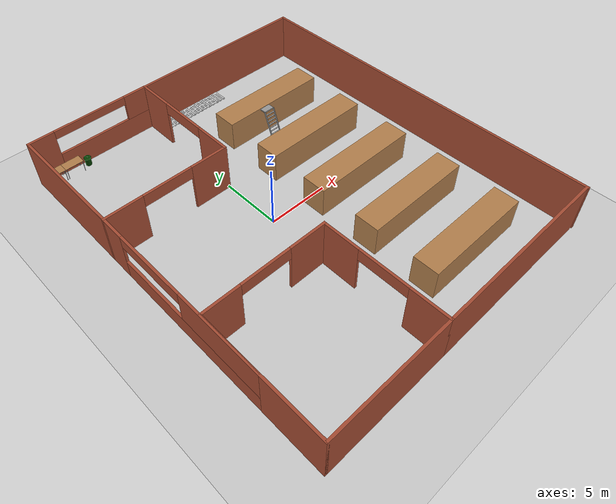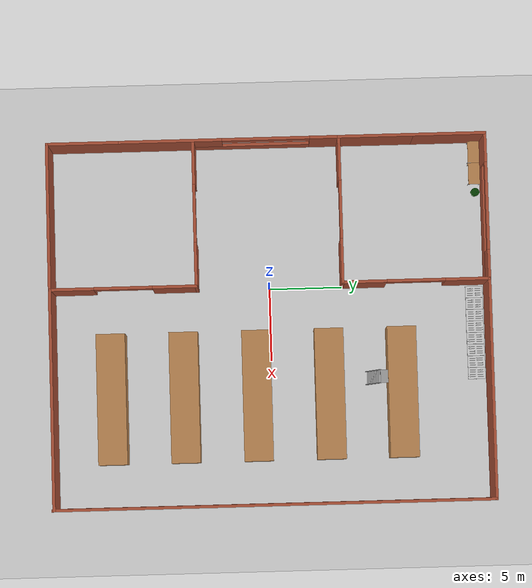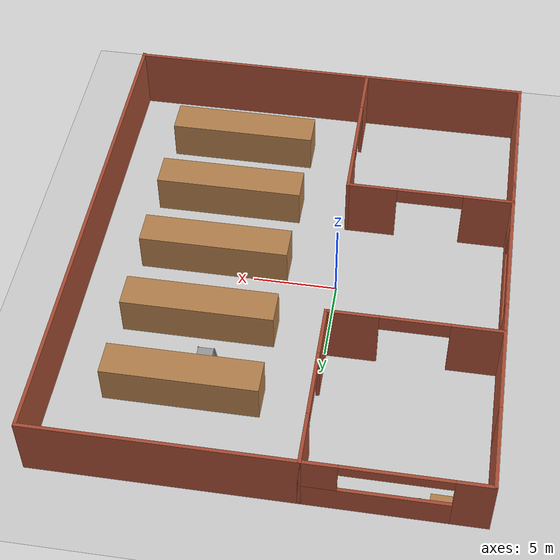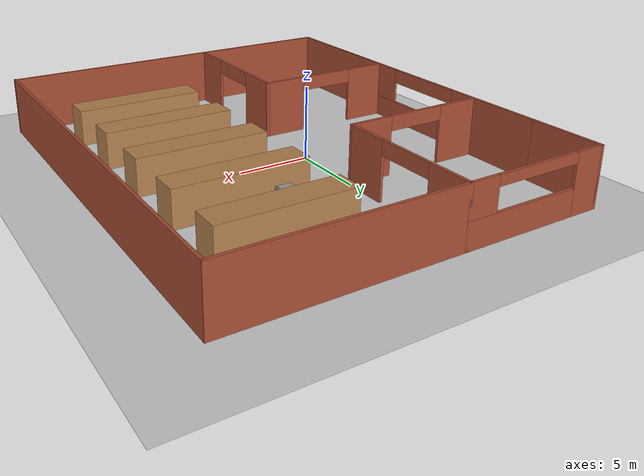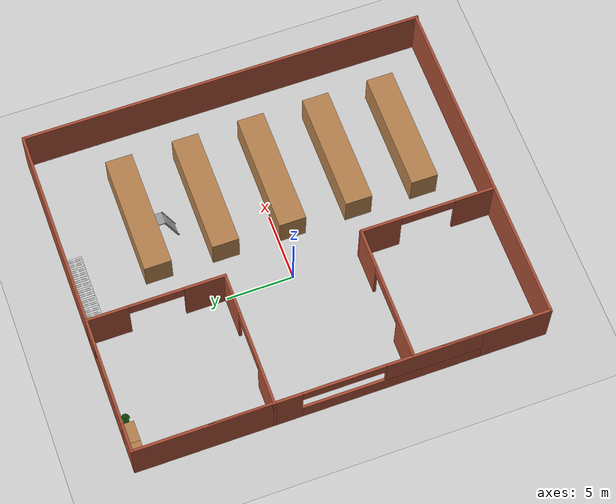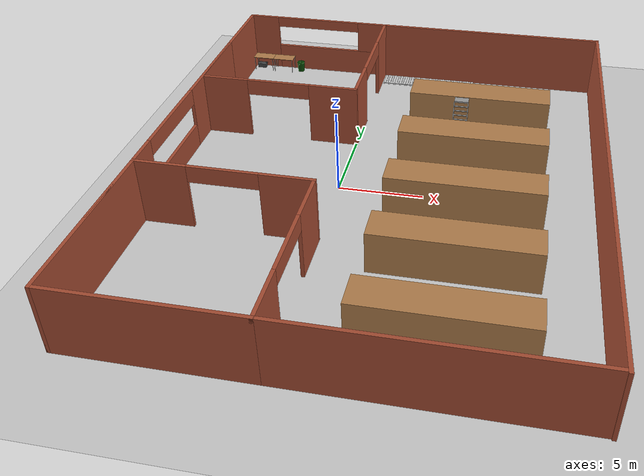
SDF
<sdf version="1.4">
 <world name="default">
  <include><uri>model://ground_plane</uri></include>
  <include><uri>model://sun</uri></include>
  <model name="WareHouse">
   <pose>2.5 -0.033501 0 0 -0 0</pose>
   <link name="Wall_12">
    <pose>-7.5 -4.9665 0 0 -0 3.14159</pose>
    <visual name="Wall_12_Visual_0">
     <pose>-3.55 0 2 0 -0 0</pose>
     <geometry><box><size>3.1 0.2 4</size></box></geometry>
     <material>
      <script><uri>file://media/materials/scripts/gazebo.material</uri><name>Gazebo/Bricks</name></script>
      <ambient>1 1 1 1</ambient>
     </material>
     <meta><layer>0</layer></meta>
    </visual>
    <collision name="Wall_12_Collision_0">
     <geometry><box><size>3.1 0.2 4</size></box></geometry>
     <pose>-3.55 0 2 0 -0 0</pose>
    </collision>
    <visual name="Wall_12_Visual_1">
     <pose>3.55 0 2 0 -0 0</pose>
     <geometry><box><size>3.1 0.2 4</size></box></geometry>
     <material>
      <script><uri>file://media/materials/scripts/gazebo.material</uri><name>Gazebo/Bricks</name></script>
      <ambient>1 1 1 1</ambient>
     </material>
     <meta><layer>0</layer></meta>
    </visual>
    <collision name="Wall_12_Collision_1">
     <geometry><box><size>3.1 0.2 4</size></box></geometry>
     <pose>3.55 0 2 0 -0 0</pose>
    </collision>
    <visual name="Wall_12_Visual_2">
     <pose>0 0 3.5 0 -0 0</pose>
     <geometry><box><size>4 0.2 1</size></box></geometry>
     <material>
      <script><uri>file://media/materials/scripts/gazebo.material</uri><name>Gazebo/Bricks</name></script>
      <ambient>1 1 1 1</ambient>
     </material>
     <meta><layer>0</layer></meta>
    </visual>
    <collision name="Wall_12_Collision_2">
     <geometry><box><size>4 0.2 1</size></box></geometry>
     <pose>0 0 3.5 0 -0 0</pose>
    </collision>
   </link>
   <link name="Wall_13">
    <collision name="Wall_13_Collision">
     <geometry><box><size>10.2 0.2 4</size></box></geometry>
     <pose>0 0 2 0 -0 0</pose>
    </collision>
    <visual name="Wall_13_Visual">
     <pose>0 0 2 0 -0 0</pose>
     <geometry><box><size>10.2 0.2 4</size></box></geometry>
     <material>
      <script><uri>file://media/materials/scripts/gazebo.material</uri><name>Gazebo/Bricks</name></script>
      <ambient>1 1 1 1</ambient>
     </material>
     <meta><layer>0</layer></meta>
    </visual>
    <pose>-12.5 -9.9665 0 0 -0 -1.5708</pose>
   </link>
   <link name="Wall_14">
    <collision name="Wall_14_Collision">
     <geometry><box><size>10.2 0.2 4</size></box></geometry>
     <pose>0 0 2 0 -0 0</pose>
    </collision>
    <visual name="Wall_14_Visual">
     <pose>0 0 2 0 -0 0</pose>
     <geometry><box><size>10.2 0.2 4</size></box></geometry>
     <material>
      <script><uri>file://media/materials/scripts/gazebo.material</uri><name>Gazebo/Bricks</name></script>
      <ambient>1 1 1 1</ambient>
     </material>
     <meta><layer>0</layer></meta>
    </visual>
    <pose>-7.5 -14.9665 0 0 -0 0</pose>
   </link>
   <link name="Wall_15">
    <pose>-2.5 -9.9665 0 0 -0 1.5708</pose>
    <visual name="Wall_15_Visual_0">
     <pose>-3.55 0 2 0 -0 0</pose>
     <geometry><box><size>3.1 0.2 4</size></box></geometry>
     <material>
      <script><uri>file://media/materials/scripts/gazebo.material</uri><name>Gazebo/Bricks</name></script>
      <ambient>1 1 1 1</ambient>
     </material>
     <meta><layer>0</layer></meta>
    </visual>
    <collision name="Wall_15_Collision_0">
     <geometry><box><size>3.1 0.2 4</size></box></geometry>
     <pose>-3.55 0 2 0 -0 0</pose>
    </collision>
    <visual name="Wall_15_Visual_1">
     <pose>3.55 0 2 0 -0 0</pose>
     <geometry><box><size>3.1 0.2 4</size></box></geometry>
     <material>
      <script><uri>file://media/materials/scripts/gazebo.material</uri><name>Gazebo/Bricks</name></script>
      <ambient>1 1 1 1</ambient>
     </material>
     <meta><layer>0</layer></meta>
    </visual>
    <collision name="Wall_15_Collision_1">
     <geometry><box><size>3.1 0.2 4</size></box></geometry>
     <pose>3.55 0 2 0 -0 0</pose>
    </collision>
    <visual name="Wall_15_Visual_2">
     <pose>0 0 3.5 0 -0 0</pose>
     <geometry><box><size>4 0.2 1</size></box></geometry>
     <material>
      <script><uri>file://media/materials/scripts/gazebo.material</uri><name>Gazebo/Bricks</name></script>
      <ambient>1 1 1 1</ambient>
     </material>
     <meta><layer>0</layer></meta>
    </visual>
    <collision name="Wall_15_Collision_2">
     <geometry><box><size>4 0.2 1</size></box></geometry>
     <pose>0 0 3.5 0 -0 0</pose>
    </collision>
   </link>
   <link name="Wall_17">
    <pose>-12.5 0.033501 0 0 -0 -1.5708</pose>
    <visual name="Wall_17_Visual_0">
     <pose>-6.55 0 2 0 -0 0</pose>
     <geometry><box><size>7.1 0.2 4</size></box></geometry>
     <material>
      <script><uri>file://media/materials/scripts/gazebo.material</uri><name>Gazebo/Bricks</name></script>
      <ambient>1 1 1 1</ambient>
     </material>
     <meta><layer>0</layer></meta>
    </visual>
    <collision name="Wall_17_Collision_0">
     <geometry><box><size>7.1 0.2 4</size></box></geometry>
     <pose>-6.55 0 2 0 -0 0</pose>
    </collision>
    <visual name="Wall_17_Visual_1">
     <pose>3.55 0 0.75 0 -0 0</pose>
     <geometry><box><size>13.1 0.2 1.5</size></box></geometry>
     <material>
      <script><uri>file://media/materials/scripts/gazebo.material</uri><name>Gazebo/Bricks</name></script>
      <ambient>1 1 1 1</ambient>
     </material>
     <meta><layer>0</layer></meta>
    </visual>
    <collision name="Wall_17_Collision_1">
     <geometry><box><size>13.1 0.2 1.5</size></box></geometry>
     <pose>3.55 0 0.75 0 -0 0</pose>
    </collision>
    <visual name="Wall_17_Visual_2">
     <pose>6.55 0 2.75 0 -0 0</pose>
     <geometry><box><size>7.1 0.2 2.5</size></box></geometry>
     <material>
      <script><uri>file://media/materials/scripts/gazebo.material</uri><name>Gazebo/Bricks</name></script>
      <ambient>1 1 1 1</ambient>
     </material>
     <meta><layer>0</layer></meta>
    </visual>
    <collision name="Wall_17_Collision_2">
     <geometry><box><size>7.1 0.2 2.5</size></box></geometry>
     <pose>6.55 0 2.75 0 -0 0</pose>
    </collision>
    <visual name="Wall_17_Visual_3">
     <pose>0 0 3.5 0 -0 0</pose>
     <geometry><box><size>6 0.2 1</size></box></geometry>
     <material>
      <script><uri>file://media/materials/scripts/gazebo.material</uri><name>Gazebo/Bricks</name></script>
      <ambient>1 1 1 1</ambient>
     </material>
     <meta><layer>0</layer></meta>
    </visual>
    <collision name="Wall_17_Collision_3">
     <geometry><box><size>6 0.2 1</size></box></geometry>
     <pose>0 0 3.5 0 -0 0</pose>
    </collision>
   </link>
   <link name="Wall_19">
    <collision name="Wall_19_Collision">
     <geometry><box><size>15.2 0.2 4</size></box></geometry>
     <pose>0 0 2 0 -0 0</pose>
    </collision>
    <visual name="Wall_19_Visual">
     <pose>0 0 2 0 -0 0</pose>
     <geometry><box><size>15.2 0.2 4</size></box></geometry>
     <material>
      <script><uri>file://media/materials/scripts/gazebo.material</uri><name>Gazebo/Bricks</name></script>
      <ambient>1 1 1 1</ambient>
     </material>
     <meta><layer>0</layer></meta>
    </visual>
    <pose>5 15.0335 0 0 -0 0</pose>
   </link>
   <link name="Wall_2">
    <pose>-7.5 15.0335 0 0 -0 0</pose>
    <visual name="Wall_2_Visual_0">
     <pose>-4.04112 0 2 0 -0 0</pose>
     <geometry><box><size>2.11776 0.2 4</size></box></geometry>
     <material>
      <script><uri>file://media/materials/scripts/gazebo.material</uri><name>Gazebo/Bricks</name></script>
      <ambient>1 1 1 1</ambient>
     </material>
     <meta><layer>0</layer></meta>
    </visual>
    <collision name="Wall_2_Collision_0">
     <geometry><box><size>2.11776 0.2 4</size></box></geometry>
     <pose>-4.04112 0 2 0 -0 0</pose>
    </collision>
    <visual name="Wall_2_Visual_1">
     <pose>1.05888 0 0.9 0 -0 0</pose>
     <geometry><box><size>8.08224 0.2 1.8</size></box></geometry>
     <material>
      <script><uri>file://media/materials/scripts/gazebo.material</uri><name>Gazebo/Bricks</name></script>
      <ambient>1 1 1 1</ambient>
     </material>
     <meta><layer>0</layer></meta>
    </visual>
    <collision name="Wall_2_Collision_1">
     <geometry><box><size>8.08224 0.2 1.8</size></box></geometry>
     <pose>1.05888 0 0.9 0 -0 0</pose>
    </collision>
    <visual name="Wall_2_Visual_2">
     <pose>4.05888 0 2.9 0 -0 0</pose>
     <geometry><box><size>2.08224 0.2 2.2</size></box></geometry>
     <material>
      <script><uri>file://media/materials/scripts/gazebo.material</uri><name>Gazebo/Bricks</name></script>
      <ambient>1 1 1 1</ambient>
     </material>
     <meta><layer>0</layer></meta>
    </visual>
    <collision name="Wall_2_Collision_2">
     <geometry><box><size>2.08224 0.2 2.2</size></box></geometry>
     <pose>4.05888 0 2.9 0 -0 0</pose>
    </collision>
    <visual name="Wall_2_Visual_3">
     <pose>0.01776 0 3.65 0 -0 0</pose>
     <geometry><box><size>6 0.2 0.7</size></box></geometry>
     <material>
      <script><uri>file://media/materials/scripts/gazebo.material</uri><name>Gazebo/Bricks</name></script>
      <ambient>1 1 1 1</ambient>
     </material>
     <meta><layer>0</layer></meta>
    </visual>
    <collision name="Wall_2_Collision_3">
     <geometry><box><size>6 0.2 0.7</size></box></geometry>
     <pose>0.01776 0 3.65 0 -0 0</pose>
    </collision>
   </link>
   <link name="Wall_21">
    <collision name="Wall_21_Collision">
     <geometry><box><size>30.2 0.2 4</size></box></geometry>
     <pose>0 0 2 0 -0 0</pose>
    </collision>
    <visual name="Wall_21_Visual">
     <pose>0 0 2 0 -0 0</pose>
     <geometry><box><size>30.2 0.2 4</size></box></geometry>
     <material>
      <script><uri>file://media/materials/scripts/gazebo.material</uri><name>Gazebo/Bricks</name></script>
      <ambient>1 1 1 1</ambient>
     </material>
     <meta><layer>0</layer></meta>
    </visual>
    <pose>12.5 -0.033499 0 0 -0 -1.5708</pose>
   </link>
   <link name="Wall_23">
    <collision name="Wall_23_Collision">
     <geometry><box><size>15.2 0.2 4</size></box></geometry>
     <pose>0 0 2 0 -0 0</pose>
    </collision>
    <visual name="Wall_23_Visual">
     <pose>0 0 2 0 -0 0</pose>
     <geometry><box><size>15.2 0.2 4</size></box></geometry>
     <material>
      <script><uri>file://media/materials/scripts/gazebo.material</uri><name>Gazebo/Bricks</name></script>
      <ambient>1 1 1 1</ambient>
     </material>
     <meta><layer>0</layer></meta>
    </visual>
    <pose>5 -14.9665 0 0 -0 0</pose>
   </link>
   <link name="Wall_4">
    <pose>-2.5 10.0335 0 0 -0 -1.5708</pose>
    <visual name="Wall_4_Visual_0">
     <pose>-3.54841 0 2 0 -0 0</pose>
     <geometry><box><size>3.10318 0.2 4</size></box></geometry>
     <material>
      <script><uri>file://media/materials/scripts/gazebo.material</uri><name>Gazebo/Bricks</name></script>
      <ambient>1 1 1 1</ambient>
     </material>
     <meta><layer>0</layer></meta>
    </visual>
    <collision name="Wall_4_Collision_0">
     <geometry><box><size>3.10318 0.2 4</size></box></geometry>
     <pose>-3.54841 0 2 0 -0 0</pose>
    </collision>
    <visual name="Wall_4_Visual_1">
     <pose>3.55159 0 2 0 -0 0</pose>
     <geometry><box><size>3.09682 0.2 4</size></box></geometry>
     <material>
      <script><uri>file://media/materials/scripts/gazebo.material</uri><name>Gazebo/Bricks</name></script>
      <ambient>1 1 1 1</ambient>
     </material>
     <meta><layer>0</layer></meta>
    </visual>
    <collision name="Wall_4_Collision_1">
     <geometry><box><size>3.09682 0.2 4</size></box></geometry>
     <pose>3.55159 0 2 0 -0 0</pose>
    </collision>
    <visual name="Wall_4_Visual_2">
     <pose>0.003178 0 3.5 0 -0 0</pose>
     <geometry><box><size>4 0.2 1</size></box></geometry>
     <material>
      <script><uri>file://media/materials/scripts/gazebo.material</uri><name>Gazebo/Bricks</name></script>
      <ambient>1 1 1 1</ambient>
     </material>
     <meta><layer>0</layer></meta>
    </visual>
    <collision name="Wall_4_Collision_2">
     <geometry><box><size>4 0.2 1</size></box></geometry>
     <pose>0.003178 0 3.5 0 -0 0</pose>
    </collision>
   </link>
   <link name="Wall_5">
    <pose>-7.5 5.0335 0 0 -0 3.14159</pose>
    <visual name="Wall_5_Visual_0">
     <pose>-3.55 0 2 0 -0 0</pose>
     <geometry><box><size>3.1 0.2 4</size></box></geometry>
     <material>
      <script><uri>file://media/materials/scripts/gazebo.material</uri><name>Gazebo/Bricks</name></script>
      <ambient>1 1 1 1</ambient>
     </material>
     <meta><layer>0</layer></meta>
    </visual>
    <collision name="Wall_5_Collision_0">
     <geometry><box><size>3.1 0.2 4</size></box></geometry>
     <pose>-3.55 0 2 0 -0 0</pose>
    </collision>
    <visual name="Wall_5_Visual_1">
     <pose>3.55 0 2 0 -0 0</pose>
     <geometry><box><size>3.1 0.2 4</size></box></geometry>
     <material>
      <script><uri>file://media/materials/scripts/gazebo.material</uri><name>Gazebo/Bricks</name></script>
      <ambient>1 1 1 1</ambient>
     </material>
     <meta><layer>0</layer></meta>
    </visual>
    <collision name="Wall_5_Collision_1">
     <geometry><box><size>3.1 0.2 4</size></box></geometry>
     <pose>3.55 0 2 0 -0 0</pose>
    </collision>
    <visual name="Wall_5_Visual_2">
     <pose>0 0 3.5 0 -0 0</pose>
     <geometry><box><size>4 0.2 1</size></box></geometry>
     <material>
      <script><uri>file://media/materials/scripts/gazebo.material</uri><name>Gazebo/Bricks</name></script>
      <ambient>1 1 1 1</ambient>
     </material>
     <meta><layer>0</layer></meta>
    </visual>
    <collision name="Wall_5_Collision_2">
     <geometry><box><size>4 0.2 1</size></box></geometry>
     <pose>0 0 3.5 0 -0 0</pose>
    </collision>
   </link>
   <link name="Wall_6">
    <collision name="Wall_6_Collision">
     <geometry><box><size>10.2 0.2 4</size></box></geometry>
     <pose>0 0 2 0 -0 0</pose>
    </collision>
    <visual name="Wall_6_Visual">
     <pose>0 0 2 0 -0 0</pose>
     <geometry><box><size>10.2 0.2 4</size></box></geometry>
     <material>
      <script><uri>file://media/materials/scripts/gazebo.material</uri><name>Gazebo/Bricks</name></script>
      <ambient>1 1 1 1</ambient>
     </material>
     <meta><layer>0</layer></meta>
    </visual>
    <pose>-12.5 10.0335 0 0 -0 1.5708</pose>
   </link>
   <link name="link_0">
    <inertial>
     <mass>1e+08</mass>
     <inertia>
      <ixx>1.66667e+07</ixx>
      <ixy>0</ixy>
      <ixz>0</ixz>
      <iyy>1.66667e+07</iyy>
      <iyz>0</iyz>
      <izz>1.66667e+07</izz>
     </inertia>
    </inertial>
    <pose>5 9 1.25 0 -0 0</pose>
    <visual name="visual">
     <geometry><box><size>9 2 2.5</size></box></geometry>
     <material>
      <lighting>1</lighting>
      <script><uri>file://media/materials/scripts/gazebo.material</uri><name>Gazebo/Wood</name></script>
      <shader type="pixel"><normal_map>__default__</normal_map></shader>
      <ambient>0.3 0.3 0.3 1</ambient>
      <diffuse>0.7 0.7 0.7 1</diffuse>
      <specular>0.01 0.01 0.01 1</specular>
      <emissive>0 0 0 1</emissive>
     </material>
    </visual>
    <collision name="collision">
     <geometry><box><size>9 2 2.5</size></box></geometry>
     <surface>
      <friction>
       <ode><mu>1</mu><mu2>1</mu2><fdir1>0 0 0</fdir1><slip1>0</slip1><slip2>0</slip2></ode>
       <torsional>
        <coefficient>1</coefficient>
        <patch_radius>0</patch_radius>
        <surface_radius>0</surface_radius>
        <use_patch_radius>1</use_patch_radius>
        <ode><slip>0</slip></ode>
       </torsional>
      </friction>
      <bounce><restitution_coefficient>0</restitution_coefficient><threshold>1e+06</threshold></bounce>
      <contact>
       <collide_without_contact>0</collide_without_contact>
       <collide_without_contact_bitmask>1</collide_without_contact_bitmask>
       <collide_bitmask>1</collide_bitmask>
       <ode>
        <soft_cfm>0</soft_cfm>
        <soft_erp>0.2</soft_erp>
        <kp>1e+13</kp>
        <kd>1</kd>
        <max_vel>0.01</max_vel>
        <min_depth>0</min_depth>
       </ode>
       <bullet>
        <split_impulse>1</split_impulse>
        <split_impulse_penetration_threshold>-0.01</split_impulse_penetration_threshold>
        <soft_cfm>0</soft_cfm>
        <soft_erp>0.2</soft_erp>
        <kp>1e+13</kp>
        <kd>1</kd>
       </bullet>
      </contact>
     </surface>
    </collision>
   </link>
   <link name="link_0_clone">
    <inertial>
     <mass>1e+08</mass>
     <inertia>
      <ixx>1.66667e+07</ixx>
      <ixy>0</ixy>
      <ixz>0</ixz>
      <iyy>1.66667e+07</iyy>
      <iyz>0</iyz>
      <izz>1.66667e+07</izz>
     </inertia>
    </inertial>
    <pose>5 4 1.25 0 -0 0</pose>
    <visual name="visual">
     <geometry><box><size>9 2 2.5</size></box></geometry>
     <material>
      <lighting>1</lighting>
      <script><uri>file://media/materials/scripts/gazebo.material</uri><name>Gazebo/Wood</name></script>
      <shader type="pixel"><normal_map>__default__</normal_map></shader>
      <ambient>0.3 0.3 0.3 1</ambient>
      <diffuse>0.7 0.7 0.7 1</diffuse>
      <specular>0.01 0.01 0.01 1</specular>
      <emissive>0 0 0 1</emissive>
     </material>
    </visual>
    <collision name="collision">
     <geometry><box><size>9 2 2.5</size></box></geometry>
     <surface>
      <friction>
       <ode><mu>1</mu><mu2>1</mu2><fdir1>0 0 0</fdir1><slip1>0</slip1><slip2>0</slip2></ode>
       <torsional>
        <coefficient>1</coefficient>
        <patch_radius>0</patch_radius>
        <surface_radius>0</surface_radius>
        <use_patch_radius>1</use_patch_radius>
        <ode><slip>0</slip></ode>
       </torsional>
      </friction>
      <bounce><restitution_coefficient>0</restitution_coefficient><threshold>1e+06</threshold></bounce>
      <contact>
       <collide_without_contact>0</collide_without_contact>
       <collide_without_contact_bitmask>1</collide_without_contact_bitmask>
       <collide_bitmask>1</collide_bitmask>
       <ode>
        <soft_cfm>0</soft_cfm>
        <soft_erp>0.2</soft_erp>
        <kp>1e+13</kp>
        <kd>1</kd>
        <max_vel>0.01</max_vel>
        <min_depth>0</min_depth>
       </ode>
       <bullet>
        <split_impulse>1</split_impulse>
        <split_impulse_penetration_threshold>-0.01</split_impulse_penetration_threshold>
        <soft_cfm>0</soft_cfm>
        <soft_erp>0.2</soft_erp>
        <kp>1e+13</kp>
        <kd>1</kd>
       </bullet>
      </contact>
     </surface>
    </collision>
   </link>
   <link name="link_0_clone_0">
    <inertial>
     <mass>1e+08</mass>
     <inertia>
      <ixx>1.66667e+07</ixx>
      <ixy>0</ixy>
      <ixz>0</ixz>
      <iyy>1.66667e+07</iyy>
      <iyz>0</iyz>
      <izz>1.66667e+07</izz>
     </inertia>
    </inertial>
    <pose>5 -1 1.25 0 -0 0</pose>
    <visual name="visual">
     <geometry><box><size>9 2 2.5</size></box></geometry>
     <material>
      <lighting>1</lighting>
      <script><uri>file://media/materials/scripts/gazebo.material</uri><name>Gazebo/Wood</name></script>
      <shader type="pixel"><normal_map>__default__</normal_map></shader>
      <ambient>0.3 0.3 0.3 1</ambient>
      <diffuse>0.7 0.7 0.7 1</diffuse>
      <specular>0.01 0.01 0.01 1</specular>
      <emissive>0 0 0 1</emissive>
     </material>
    </visual>
    <collision name="collision">
     <geometry><box><size>9 2 2.5</size></box></geometry>
     <surface>
      <friction>
       <ode><mu>1</mu><mu2>1</mu2><fdir1>0 0 0</fdir1><slip1>0</slip1><slip2>0</slip2></ode>
       <torsional>
        <coefficient>1</coefficient>
        <patch_radius>0</patch_radius>
        <surface_radius>0</surface_radius>
        <use_patch_radius>1</use_patch_radius>
        <ode><slip>0</slip></ode>
       </torsional>
      </friction>
      <bounce><restitution_coefficient>0</restitution_coefficient><threshold>1e+06</threshold></bounce>
      <contact>
       <collide_without_contact>0</collide_without_contact>
       <collide_without_contact_bitmask>1</collide_without_contact_bitmask>
       <collide_bitmask>1</collide_bitmask>
       <ode>
        <soft_cfm>0</soft_cfm>
        <soft_erp>0.2</soft_erp>
        <kp>1e+13</kp>
        <kd>1</kd>
        <max_vel>0.01</max_vel>
        <min_depth>0</min_depth>
       </ode>
       <bullet>
        <split_impulse>1</split_impulse>
        <split_impulse_penetration_threshold>-0.01</split_impulse_penetration_threshold>
        <soft_cfm>0</soft_cfm>
        <soft_erp>0.2</soft_erp>
        <kp>1e+13</kp>
        <kd>1</kd>
       </bullet>
      </contact>
     </surface>
    </collision>
   </link>
   <link name="link_0_clone_0_clone">
    <inertial>
     <mass>1e+08</mass>
     <inertia>
      <ixx>1.66667e+07</ixx>
      <ixy>0</ixy>
      <ixz>0</ixz>
      <iyy>1.66667e+07</iyy>
      <iyz>0</iyz>
      <izz>1.66667e+07</izz>
     </inertia>
    </inertial>
    <pose>5 -6 1.25 0 -0 0</pose>
    <visual name="visual">
     <geometry><box><size>9 2 2.5</size></box></geometry>
     <material>
      <lighting>1</lighting>
      <script><uri>file://media/materials/scripts/gazebo.material</uri><name>Gazebo/Wood</name></script>
      <shader type="pixel"><normal_map>__default__</normal_map></shader>
      <ambient>0.3 0.3 0.3 1</ambient>
      <diffuse>0.7 0.7 0.7 1</diffuse>
      <specular>0.01 0.01 0.01 1</specular>
      <emissive>0 0 0 1</emissive>
     </material>
    </visual>
    <collision name="collision">
     <geometry><box><size>9 2 2.5</size></box></geometry>
     <surface>
      <friction>
       <ode><mu>1</mu><mu2>1</mu2><fdir1>0 0 0</fdir1><slip1>0</slip1><slip2>0</slip2></ode>
       <torsional>
        <coefficient>1</coefficient>
        <patch_radius>0</patch_radius>
        <surface_radius>0</surface_radius>
        <use_patch_radius>1</use_patch_radius>
        <ode><slip>0</slip></ode>
       </torsional>
      </friction>
      <bounce><restitution_coefficient>0</restitution_coefficient><threshold>1e+06</threshold></bounce>
      <contact>
       <collide_without_contact>0</collide_without_contact>
       <collide_without_contact_bitmask>1</collide_without_contact_bitmask>
       <collide_bitmask>1</collide_bitmask>
       <ode>
        <soft_cfm>0</soft_cfm>
        <soft_erp>0.2</soft_erp>
        <kp>1e+13</kp>
        <kd>1</kd>
        <max_vel>0.01</max_vel>
        <min_depth>0</min_depth>
       </ode>
       <bullet>
        <split_impulse>1</split_impulse>
        <split_impulse_penetration_threshold>-0.01</split_impulse_penetration_threshold>
        <soft_cfm>0</soft_cfm>
        <soft_erp>0.2</soft_erp>
        <kp>1e+13</kp>
        <kd>1</kd>
       </bullet>
      </contact>
     </surface>
    </collision>
   </link>
   <link name="link_0_clone_0_clone_0">
    <inertial>
     <mass>1e+08</mass>
     <inertia>
      <ixx>1.66667e+07</ixx>
      <ixy>0</ixy>
      <ixz>0</ixz>
      <iyy>1.66667e+07</iyy>
      <iyz>0</iyz>
      <izz>1.66667e+07</izz>
     </inertia>
    </inertial>
    <pose>5 -11 1.25 0 -0 0</pose>
    <visual name="visual">
     <geometry><box><size>9 2 2.5</size></box></geometry>
     <material>
      <lighting>1</lighting>
      <script><uri>file://media/materials/scripts/gazebo.material</uri><name>Gazebo/Wood</name></script>
      <shader type="pixel"><normal_map>__default__</normal_map></shader>
      <ambient>0.3 0.3 0.3 1</ambient>
      <diffuse>0.7 0.7 0.7 1</diffuse>
      <specular>0.01 0.01 0.01 1</specular>
      <emissive>0 0 0 1</emissive>
     </material>
    </visual>
    <collision name="collision">
     <geometry><box><size>9 2 2.5</size></box></geometry>
     <surface>
      <friction>
       <ode><mu>1</mu><mu2>1</mu2><fdir1>0 0 0</fdir1><slip1>0</slip1><slip2>0</slip2></ode>
       <torsional>
        <coefficient>1</coefficient>
        <patch_radius>0</patch_radius>
        <surface_radius>0</surface_radius>
        <use_patch_radius>1</use_patch_radius>
        <ode><slip>0</slip></ode>
       </torsional>
      </friction>
      <bounce><restitution_coefficient>0</restitution_coefficient><threshold>1e+06</threshold></bounce>
      <contact>
       <collide_without_contact>0</collide_without_contact>
       <collide_without_contact_bitmask>1</collide_without_contact_bitmask>
       <collide_bitmask>1</collide_bitmask>
       <ode>
        <soft_cfm>0</soft_cfm>
        <soft_erp>0.2</soft_erp>
        <kp>1e+13</kp>
        <kd>1</kd>
        <max_vel>0.01</max_vel>
        <min_depth>0</min_depth>
       </ode>
       <bullet>
        <split_impulse>1</split_impulse>
        <split_impulse_penetration_threshold>-0.01</split_impulse_penetration_threshold>
        <soft_cfm>0</soft_cfm>
        <soft_erp>0.2</soft_erp>
        <kp>1e+13</kp>
        <kd>1</kd>
       </bullet>
      </contact>
     </surface>
    </collision>
   </link>
   <model name="euro_pallet">
    <link name="link">
     <inertial>
      <mass>20</mass>
      <inertia><ixx>2.43</ixx><ixy>0</ixy><ixz>0</ixz><iyy>1.1</iyy><iyz>0</iyz><izz>3.47</izz></inertia>
     </inertial>
     <collision name="collision">
      <pose>0 0 0.05 0 -0 0</pose>
      <geometry><mesh><uri>model://euro_pallet/meshes/pallet.dae</uri><scale>0.1 0.1 0.1</scale></mesh></geometry>
     </collision>
     <visual name="visual">
      <pose>0 0 0.05 0 -0 0</pose>
      <geometry><mesh><uri>model://euro_pallet/meshes/pallet.dae</uri><scale>0.1 0.1 0.1</scale></mesh></geometry>
     </visual>
    </link>
    <pose>-1.91189 14.2628 0 0 -0 0</pose>
   </model>
   <model name="euro_pallet_0">
    <link name="link">
     <inertial>
      <mass>20</mass>
      <inertia><ixx>2.43</ixx><ixy>0</ixy><ixz>0</ixz><iyy>1.1</iyy><iyz>0</iyz><izz>3.47</izz></inertia>
     </inertial>
     <collision name="collision">
      <pose>0 0 0.05 0 -0 0</pose>
      <geometry><mesh><uri>model://euro_pallet/meshes/pallet.dae</uri><scale>0.1 0.1 0.1</scale></mesh></geometry>
     </collision>
     <visual name="visual">
      <pose>0 0 0.05 0 -0 0</pose>
      <geometry><mesh><uri>model://euro_pallet/meshes/pallet.dae</uri><scale>0.1 0.1 0.1</scale></mesh></geometry>
     </visual>
    </link>
    <pose>-1.10471 14.2621 0 0 -0 0</pose>
   </model>
   <model name="euro_pallet_1">
    <link name="link">
     <inertial>
      <mass>20</mass>
      <inertia><ixx>2.43</ixx><ixy>0</ixy><ixz>0</ixz><iyy>1.1</iyy><iyz>0</iyz><izz>3.47</izz></inertia>
     </inertial>
     <collision name="collision">
      <pose>0 0 0.05 0 -0 0</pose>
      <geometry><mesh><uri>model://euro_pallet/meshes/pallet.dae</uri><scale>0.1 0.1 0.1</scale></mesh></geometry>
     </collision>
     <visual name="visual">
      <pose>0 0 0.05 0 -0 0</pose>
      <geometry><mesh><uri>model://euro_pallet/meshes/pallet.dae</uri><scale>0.1 0.1 0.1</scale></mesh></geometry>
     </visual>
    </link>
    <pose>-0.291147 14.2621 0 0 -0 0</pose>
   </model>
   <model name="euro_pallet_2">
    <link name="link">
     <inertial>
      <mass>20</mass>
      <inertia><ixx>2.43</ixx><ixy>0</ixy><ixz>0</ixz><iyy>1.1</iyy><iyz>0</iyz><izz>3.47</izz></inertia>
     </inertial>
     <collision name="collision">
      <pose>0 0 0.05 0 -0 0</pose>
      <geometry><mesh><uri>model://euro_pallet/meshes/pallet.dae</uri><scale>0.1 0.1 0.1</scale></mesh></geometry>
     </collision>
     <visual name="visual">
      <pose>0 0 0.05 0 -0 0</pose>
      <geometry><mesh><uri>model://euro_pallet/meshes/pallet.dae</uri><scale>0.1 0.1 0.1</scale></mesh></geometry>
     </visual>
    </link>
    <pose>0.512337 14.2599 0 0 -0 0</pose>
   </model>
   <model name="euro_pallet_3">
    <link name="link">
     <inertial>
      <mass>20</mass>
      <inertia><ixx>2.43</ixx><ixy>0</ixy><ixz>0</ixz><iyy>1.1</iyy><iyz>0</iyz><izz>3.47</izz></inertia>
     </inertial>
     <collision name="collision">
      <pose>0 0 0.05 0 -0 0</pose>
      <geometry><mesh><uri>model://euro_pallet/meshes/pallet.dae</uri><scale>0.1 0.1 0.1</scale></mesh></geometry>
     </collision>
     <visual name="visual">
      <pose>0 0 0.05 0 -0 0</pose>
      <geometry><mesh><uri>model://euro_pallet/meshes/pallet.dae</uri><scale>0.1 0.1 0.1</scale></mesh></geometry>
     </visual>
    </link>
    <pose>1.32208 14.2683 0 0 -0 0</pose>
   </model>
   <model name="euro_pallet_4">
    <link name="link">
     <inertial>
      <mass>20</mass>
      <inertia><ixx>2.43</ixx><ixy>0</ixy><ixz>0</ixz><iyy>1.1</iyy><iyz>0</iyz><izz>3.47</izz></inertia>
     </inertial>
     <collision name="collision">
      <pose>0 0 0.05 0 -0 0</pose>
      <geometry><mesh><uri>model://euro_pallet/meshes/pallet.dae</uri><scale>0.1 0.1 0.1</scale></mesh></geometry>
     </collision>
     <visual name="visual">
      <pose>0 0 0.05 0 -0 0</pose>
      <geometry><mesh><uri>model://euro_pallet/meshes/pallet.dae</uri><scale>0.1 0.1 0.1</scale></mesh></geometry>
     </visual>
    </link>
    <pose>2.13714 14.2747 0 0 -0 0</pose>
   </model>
   <model name="euro_pallet_5">
    <link name="link">
     <inertial>
      <mass>20</mass>
      <inertia><ixx>2.43</ixx><ixy>0</ixy><ixz>0</ixz><iyy>1.1</iyy><iyz>0</iyz><izz>3.47</izz></inertia>
     </inertial>
     <collision name="collision">
      <pose>0 0 0.05 0 -0 0</pose>
      <geometry><mesh><uri>model://euro_pallet/meshes/pallet.dae</uri><scale>0.1 0.1 0.1</scale></mesh></geometry>
     </collision>
     <visual name="visual">
      <pose>0 0 0.05 0 -0 0</pose>
      <geometry><mesh><uri>model://euro_pallet/meshes/pallet.dae</uri><scale>0.1 0.1 0.1</scale></mesh></geometry>
     </visual>
    </link>
    <pose>2.95359 14.2776 0 0 -0 0</pose>
   </model>
   <model name="euro_pallet_6">
    <link name="link">
     <inertial>
      <mass>20</mass>
      <inertia><ixx>2.43</ixx><ixy>0</ixy><ixz>0</ixz><iyy>1.1</iyy><iyz>0</iyz><izz>3.47</izz></inertia>
     </inertial>
     <collision name="collision">
      <pose>0 0 0.05 0 -0 0</pose>
      <geometry><mesh><uri>model://euro_pallet/meshes/pallet.dae</uri><scale>0.1 0.1 0.1</scale></mesh></geometry>
     </collision>
     <visual name="visual">
      <pose>0 0 0.05 0 -0 0</pose>
      <geometry><mesh><uri>model://euro_pallet/meshes/pallet.dae</uri><scale>0.1 0.1 0.1</scale></mesh></geometry>
     </visual>
    </link>
    <pose>3.76216 14.2837 0 0 -0 0</pose>
   </model>
   <model name="first_2015_trash_can">
    <link name="link">
     <inertial>
      <pose>0 0 0.3683 0 -0 0</pose>
      <mass>4.83076</mass>
      <inertia>
       <ixx>0.281534</ixx>
       <ixy>0</ixy>
       <ixz>0</ixz>
       <iyy>0.281534</iyy>
       <iyz>0</iyz>
       <izz>0.126223</izz>
      </inertia>
     </inertial>
     <visual name="visual">
      <geometry><mesh><uri>model://first_2015_trash_can/meshes/trash_can.dae</uri></mesh></geometry>
     </visual>
     <collision name="collision">
      <geometry><mesh><uri>model://first_2015_trash_can/meshes/trash_can.dae</uri></mesh></geometry>
     </collision>
    </link>
    <pose>-8.83203 14.5313 0 0 -0 0</pose>
   </model>
   <model name="grey_tote">
    <link name="link">
     <inertial>
      <pose>0 0 0.14155 0 -0 0</pose>
      <mass>3.53802</mass>
      <inertia>
       <ixx>0.0688358</ixx>
       <ixy>0</ixy>
       <ixz>0</ixz>
       <iyy>0.139596</iyy>
       <iyz>0</iyz>
       <izz>0.155909</izz>
      </inertia>
     </inertial>
     <collision name="lid">
      <pose>0 0 0.28958 0 -0 0</pose>
      <geometry><box><size>0.67768 0.41298 0.01588</size></box></geometry>
     </collision>
     <collision name="lid_lip_1">
      <pose>0 0.20063 0.3048 0 -0 0</pose>
      <geometry><box><size>0.65068 0.0105 0.0127</size></box></geometry>
     </collision>
     <collision name="lid_lip_2">
      <pose>0 -0.20063 0.3048 0 -0 0</pose>
      <geometry><box><size>0.65068 0.0105 0.0127</size></box></geometry>
     </collision>
     <collision name="lid_lip_3">
      <pose>0.32585 0 0.3048 0 -0 0</pose>
      <geometry><box><size>0.02602 0.31202 0.0127</size></box></geometry>
     </collision>
     <collision name="lid_lip_4">
      <pose>-0.32585 0 0.3048 0 -0 0</pose>
      <geometry><box><size>0.02602 0.31202 0.0127</size></box></geometry>
     </collision>
     <collision name="side_wall_1">
      <pose>0 -0.18 0.14155 0.061147 -0 0</pose>
      <geometry><box><size>0.58404 0.02602 0.283099</size></box></geometry>
     </collision>
     <collision name="side_wall_2">
      <pose>0 0.18 0.14155 -0.061147 0 0</pose>
      <geometry><box><size>0.58404 0.02602 0.283099</size></box></geometry>
     </collision>
     <collision name="side_wall_3">
      <pose>0.305 0 0.14155 0 0.061147 0</pose>
      <geometry><box><size>0.02602 0.33046 0.283099</size></box></geometry>
     </collision>
     <collision name="side_wall_4">
      <pose>-0.305 0 0.14155 0 -0.061147 0</pose>
      <geometry><box><size>0.02602 0.33046 0.283099</size></box></geometry>
     </collision>
     <collision name="bottom">
      <pose>0 0 0.01 0 -0 0</pose>
      <geometry><box><size>0.58404 0.33046 0.02</size></box></geometry>
     </collision>
     <collision name="corner_1">
      <pose>0.30202 -0.175 0.14155 0.061147 0.061147 -0</pose>
      <geometry><cylinder><radius>0.01268</radius><length>0.283099</length></cylinder></geometry>
     </collision>
     <collision name="corner_2">
      <pose>-0.30202 -0.175 0.14155 0.061147 -0.061147 0</pose>
      <geometry><cylinder><radius>0.01268</radius><length>0.283099</length></cylinder></geometry>
     </collision>
     <collision name="corner_3">
      <pose>-0.30202 0.175 0.14155 -0.061147 -0.061147 -0</pose>
      <geometry><cylinder><radius>0.01268</radius><length>0.283099</length></cylinder></geometry>
     </collision>
     <collision name="corner_4">
      <pose>0.30202 0.175 0.14155 -0.061147 0.061147 0</pose>
      <geometry><cylinder><radius>0.01268</radius><length>0.283099</length></cylinder></geometry>
     </collision>
     <visual name="visual"><geometry><mesh><uri>model://grey_tote/meshes/tote.dae</uri></mesh></geometry></visual>
    </link>
    <pose>-11.9152 14.6623 0 0 -0 0</pose>
   </model>
   <model name="table">
    <static>1</static>
    <link name="link">
     <collision name="surface">
      <pose>0 0 1 0 -0 0</pose>
      <geometry><box><size>1.5 0.8 0.03</size></box></geometry>
      <surface><friction><ode><mu>0.6</mu><mu2>0.6</mu2></ode></friction></surface>
     </collision>
     <visual name="visual1">
      <pose>0 0 1 0 -0 0</pose>
      <geometry><box><size>1.5 0.8 0.03</size></box></geometry>
      <material>
       <script><uri>file://media/materials/scripts/gazebo.material</uri><name>Gazebo/Wood</name></script>
      </material>
     </visual>
     <collision name="front_left_leg">
      <pose>0.68 0.38 0.5 0 -0 0</pose>
      <geometry><cylinder><radius>0.02</radius><length>1</length></cylinder></geometry>
     </collision>
     <visual name="front_left_leg">
      <pose>0.68 0.38 0.5 0 -0 0</pose>
      <geometry><cylinder><radius>0.02</radius><length>1</length></cylinder></geometry>
      <material>
       <script><uri>file://media/materials/scripts/gazebo.material</uri><name>Gazebo/Grey</name></script>
      </material>
     </visual>
     <collision name="front_right_leg">
      <pose>0.68 -0.38 0.5 0 -0 0</pose>
      <geometry><cylinder><radius>0.02</radius><length>1</length></cylinder></geometry>
     </collision>
     <visual name="front_right_leg">
      <pose>0.68 -0.38 0.5 0 -0 0</pose>
      <geometry><cylinder><radius>0.02</radius><length>1</length></cylinder></geometry>
      <material>
       <script><uri>file://media/materials/scripts/gazebo.material</uri><name>Gazebo/Grey</name></script>
      </material>
     </visual>
     <collision name="back_right_leg">
      <pose>-0.68 -0.38 0.5 0 -0 0</pose>
      <geometry><cylinder><radius>0.02</radius><length>1</length></cylinder></geometry>
     </collision>
     <visual name="back_right_leg">
      <pose>-0.68 -0.38 0.5 0 -0 0</pose>
      <geometry><cylinder><radius>0.02</radius><length>1</length></cylinder></geometry>
      <material>
       <script><uri>file://media/materials/scripts/gazebo.material</uri><name>Gazebo/Grey</name></script>
      </material>
     </visual>
     <collision name="back_left_leg">
      <pose>-0.68 0.38 0.5 0 -0 0</pose>
      <geometry><cylinder><radius>0.02</radius><length>1</length></cylinder></geometry>
     </collision>
     <visual name="back_left_leg">
      <pose>-0.68 0.38 0.5 0 -0 0</pose>
      <geometry><cylinder><radius>0.02</radius><length>1</length></cylinder></geometry>
      <material>
       <script><uri>file://media/materials/scripts/gazebo.material</uri><name>Gazebo/Grey</name></script>
      </material>
     </visual>
    </link>
    <pose>-11.6099 14.4729 0 0 -0 0</pose>
   </model>
   <model name="table_clone">
    <static>1</static>
    <link name="link">
     <collision name="surface">
      <pose>0 0 1 0 -0 0</pose>
      <geometry><box><size>1.5 0.8 0.03</size></box></geometry>
      <surface><friction><ode><mu>0.6</mu><mu2>0.6</mu2></ode></friction></surface>
     </collision>
     <visual name="visual1">
      <pose>0 0 1 0 -0 0</pose>
      <geometry><box><size>1.5 0.8 0.03</size></box></geometry>
      <material>
       <script><uri>file://media/materials/scripts/gazebo.material</uri><name>Gazebo/Wood</name></script>
      </material>
     </visual>
     <collision name="front_left_leg">
      <pose>0.68 0.38 0.5 0 -0 0</pose>
      <geometry><cylinder><radius>0.02</radius><length>1</length></cylinder></geometry>
     </collision>
     <visual name="front_left_leg">
      <pose>0.68 0.38 0.5 0 -0 0</pose>
      <geometry><cylinder><radius>0.02</radius><length>1</length></cylinder></geometry>
      <material>
       <script><uri>file://media/materials/scripts/gazebo.material</uri><name>Gazebo/Grey</name></script>
      </material>
     </visual>
     <collision name="front_right_leg">
      <pose>0.68 -0.38 0.5 0 -0 0</pose>
      <geometry><cylinder><radius>0.02</radius><length>1</length></cylinder></geometry>
     </collision>
     <visual name="front_right_leg">
      <pose>0.68 -0.38 0.5 0 -0 0</pose>
      <geometry><cylinder><radius>0.02</radius><length>1</length></cylinder></geometry>
      <material>
       <script><uri>file://media/materials/scripts/gazebo.material</uri><name>Gazebo/Grey</name></script>
      </material>
     </visual>
     <collision name="back_right_leg">
      <pose>-0.68 -0.38 0.5 0 -0 0</pose>
      <geometry><cylinder><radius>0.02</radius><length>1</length></cylinder></geometry>
     </collision>
     <visual name="back_right_leg">
      <pose>-0.68 -0.38 0.5 0 -0 0</pose>
      <geometry><cylinder><radius>0.02</radius><length>1</length></cylinder></geometry>
      <material>
       <script><uri>file://media/materials/scripts/gazebo.material</uri><name>Gazebo/Grey</name></script>
      </material>
     </visual>
     <collision name="back_left_leg">
      <pose>-0.68 0.38 0.5 0 -0 0</pose>
      <geometry><cylinder><radius>0.02</radius><length>1</length></cylinder></geometry>
     </collision>
     <visual name="back_left_leg">
      <pose>-0.68 0.38 0.5 0 -0 0</pose>
      <geometry><cylinder><radius>0.02</radius><length>1</length></cylinder></geometry>
      <material>
       <script><uri>file://media/materials/scripts/gazebo.material</uri><name>Gazebo/Grey</name></script>
      </material>
     </visual>
    </link>
    <pose>-10.0977 14.4682 0 0 -0 0</pose>
   </model>
   <model name="ladder_70deg_0rails">
    <static>1</static>
    <link name="step0">
     <pose>0 0.097059 0.266667 0 -0 0</pose>
     <inertial>
      <mass>9.75482</mass>
      <inertia>
       <ixx>0.00957124</ixx>
       <iyy>0.65963</iyy>
       <izz>0.666842</izz>
       <ixy>0</ixy>
       <ixz>0</ixz>
       <iyz>0</iyz>
      </inertia>
     </inertial>
     <collision name="collision"><geometry><box><size>0.9 0.1016 0.0381</size></box></geometry></collision>
     <visual name="visual">
      <geometry><box><size>0.9 0.1016 0.0381</size></box></geometry>
      <material>
       <script><uri>file://media/materials/scripts/gazebo.material</uri><name>Gazebo/Grey</name></script>
      </material>
     </visual>
    </link>
    <link name="step1">
     <pose>0 0.194117 0.533333 0 -0 0</pose>
     <inertial>
      <mass>9.75482</mass>
      <inertia>
       <ixx>0.00957124</ixx>
       <iyy>0.65963</iyy>
       <izz>0.666842</izz>
       <ixy>0</ixy>
       <ixz>0</ixz>
       <iyz>0</iyz>
      </inertia>
     </inertial>
     <collision name="collision"><geometry><box><size>0.9 0.1016 0.0381</size></box></geometry></collision>
     <visual name="visual">
      <geometry><box><size>0.9 0.1016 0.0381</size></box></geometry>
      <material>
       <script><uri>file://media/materials/scripts/gazebo.material</uri><name>Gazebo/Grey</name></script>
      </material>
     </visual>
    </link>
    <link name="step2">
     <pose>0 0.291176 0.8 0 -0 0</pose>
     <inertial>
      <mass>9.75482</mass>
      <inertia>
       <ixx>0.00957124</ixx>
       <iyy>0.65963</iyy>
       <izz>0.666842</izz>
       <ixy>0</ixy>
       <ixz>0</ixz>
       <iyz>0</iyz>
      </inertia>
     </inertial>
     <collision name="collision"><geometry><box><size>0.9 0.1016 0.0381</size></box></geometry></collision>
     <visual name="visual">
      <geometry><box><size>0.9 0.1016 0.0381</size></box></geometry>
      <material>
       <script><uri>file://media/materials/scripts/gazebo.material</uri><name>Gazebo/Grey</name></script>
      </material>
     </visual>
    </link>
    <link name="step3">
     <pose>0 0.388235 1.06667 0 -0 0</pose>
     <inertial>
      <mass>9.75482</mass>
      <inertia>
       <ixx>0.00957124</ixx>
       <iyy>0.65963</iyy>
       <izz>0.666842</izz>
       <ixy>0</ixy>
       <ixz>0</ixz>
       <iyz>0</iyz>
      </inertia>
     </inertial>
     <collision name="collision"><geometry><box><size>0.9 0.1016 0.0381</size></box></geometry></collision>
     <visual name="visual">
      <geometry><box><size>0.9 0.1016 0.0381</size></box></geometry>
      <material>
       <script><uri>file://media/materials/scripts/gazebo.material</uri><name>Gazebo/Grey</name></script>
      </material>
     </visual>
    </link>
    <link name="step4">
     <pose>0 0.485294 1.33333 0 -0 0</pose>
     <inertial>
      <mass>9.75482</mass>
      <inertia>
       <ixx>0.00957124</ixx>
       <iyy>0.65963</iyy>
       <izz>0.666842</izz>
       <ixy>0</ixy>
       <ixz>0</ixz>
       <iyz>0</iyz>
      </inertia>
     </inertial>
     <collision name="collision"><geometry><box><size>0.9 0.1016 0.0381</size></box></geometry></collision>
     <visual name="visual">
      <geometry><box><size>0.9 0.1016 0.0381</size></box></geometry>
      <material>
       <script><uri>file://media/materials/scripts/gazebo.material</uri><name>Gazebo/Grey</name></script>
      </material>
     </visual>
    </link>
    <link name="step5">
     <pose>0 0.582352 1.6 0 -0 0</pose>
     <inertial>
      <mass>9.75482</mass>
      <inertia>
       <ixx>0.00957124</ixx>
       <iyy>0.65963</iyy>
       <izz>0.666842</izz>
       <ixy>0</ixy>
       <ixz>0</ixz>
       <iyz>0</iyz>
      </inertia>
     </inertial>
     <collision name="collision"><geometry><box><size>0.9 0.1016 0.0381</size></box></geometry></collision>
     <visual name="visual">
      <geometry><box><size>0.9 0.1016 0.0381</size></box></geometry>
      <material>
       <script><uri>file://media/materials/scripts/gazebo.material</uri><name>Gazebo/Grey</name></script>
      </material>
     </visual>
    </link>
    <link name="step6">
     <pose>0 0.679411 1.86667 0 -0 0</pose>
     <inertial>
      <mass>9.75482</mass>
      <inertia>
       <ixx>0.00957124</ixx>
       <iyy>0.65963</iyy>
       <izz>0.666842</izz>
       <ixy>0</ixy>
       <ixz>0</ixz>
       <iyz>0</iyz>
      </inertia>
     </inertial>
     <collision name="collision"><geometry><box><size>0.9 0.1016 0.0381</size></box></geometry></collision>
     <visual name="visual">
      <geometry><box><size>0.9 0.1016 0.0381</size></box></geometry>
      <material>
       <script><uri>file://media/materials/scripts/gazebo.material</uri><name>Gazebo/Grey</name></script>
      </material>
     </visual>
    </link>
    <link name="step7">
     <pose>0 0.77647 2.13333 0 -0 0</pose>
     <inertial>
      <mass>9.75482</mass>
      <inertia>
       <ixx>0.00957124</ixx>
       <iyy>0.65963</iyy>
       <izz>0.666842</izz>
       <ixy>0</ixy>
       <ixz>0</ixz>
       <iyz>0</iyz>
      </inertia>
     </inertial>
     <collision name="collision"><geometry><box><size>0.9 0.1016 0.0381</size></box></geometry></collision>
     <visual name="visual">
      <geometry><box><size>0.9 0.1016 0.0381</size></box></geometry>
      <material>
       <script><uri>file://media/materials/scripts/gazebo.material</uri><name>Gazebo/Grey</name></script>
      </material>
     </visual>
    </link>
    <link name="landing">
     <pose>0 1.17353 2.4 0 -0 0</pose>
     <inertial>
      <mass>57.6072</mass>
      <inertia><ixx>1.73518</ixx><iyy>3.89545</iyy><izz>5.6167</izz><ixy>0</ixy><ixz>0</ixz><iyz>0</iyz></inertia>
     </inertial>
     <collision name="collision"><geometry><box><size>0.9 0.6 0.1016</size></box></geometry></collision>
     <visual name="visual">
      <geometry><box><size>0.9 0.6 0.1016</size></box></geometry>
      <material>
       <script><uri>file://media/materials/scripts/gazebo.material</uri><name>Gazebo/Grey</name></script>
      </material>
     </visual>
    </link>
    <link name="left_side_wall">
     <pose>-0.45 0.436764 1.2 1.22173 -0 0</pose>
     <collision name="collision"><geometry><box><size>0.0508 2.63403 0.13</size></box></geometry></collision>
     <visual name="visual">
      <geometry><box><size>0.0508 2.63403 0.13</size></box></geometry>
      <material>
       <script><uri>file://media/materials/scripts/gazebo.material</uri><name>Gazebo/Grey</name></script>
      </material>
     </visual>
    </link>
    <link name="right_side_wall">
     <pose>0.45 0.436764 1.2 1.22173 -0 0</pose>
     <collision name="collision"><geometry><box><size>0.0508 2.63403 0.13</size></box></geometry></collision>
     <visual name="visual">
      <geometry><box><size>0.0508 2.63403 0.13</size></box></geometry>
      <material>
       <script><uri>file://media/materials/scripts/gazebo.material</uri><name>Gazebo/Grey</name></script>
      </material>
     </visual>
    </link>
    <pose>3.90916 6.59194 0 0 -0 0</pose>
   </model>
  </model>
 </world>
</sdf>
